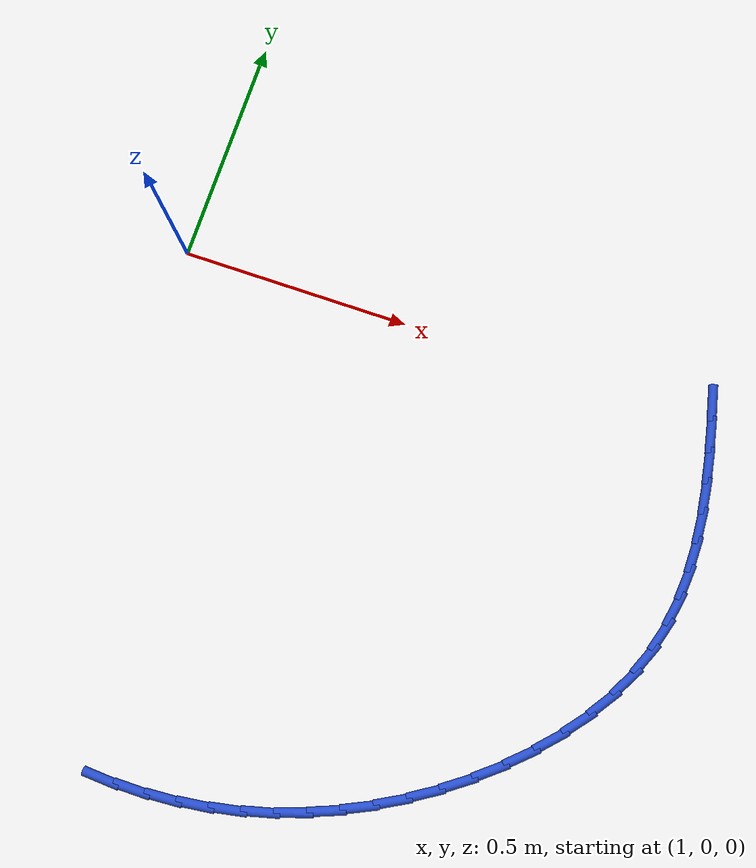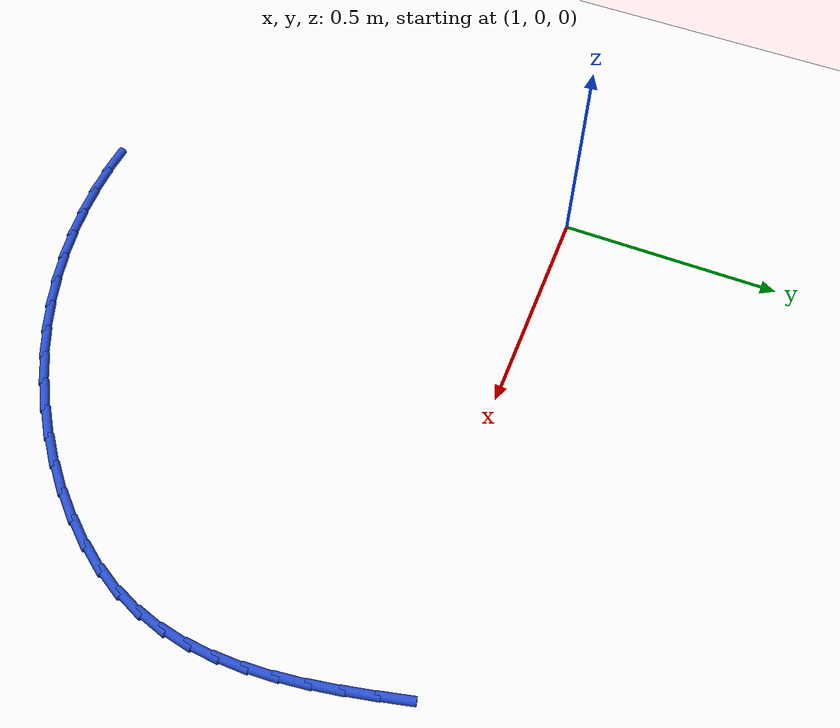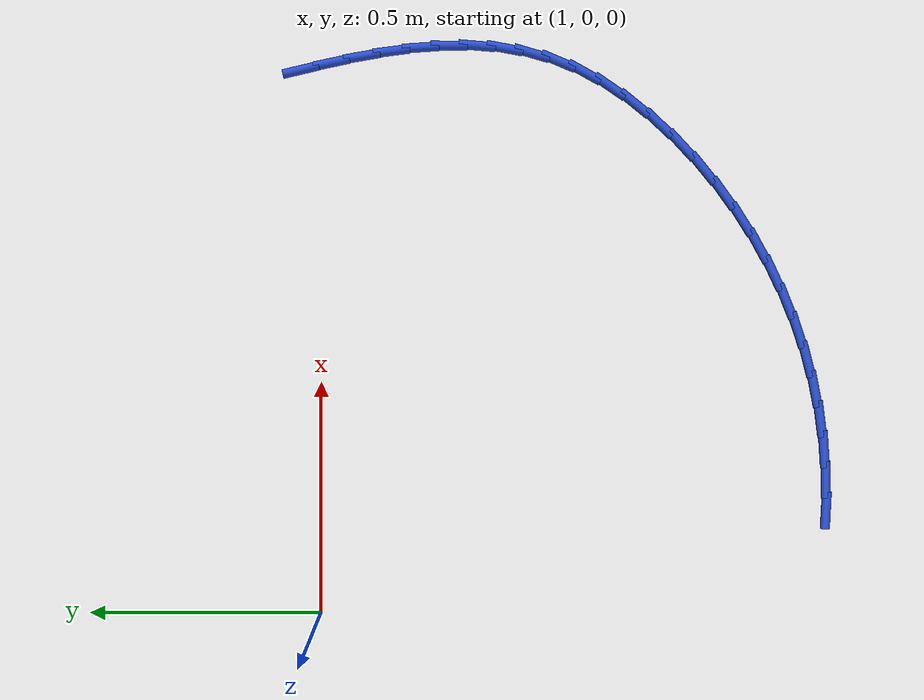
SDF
<sdf version="1.6">
 <world name="default">
  <model name="ground_plane">
   <static>1</static>
   <link name="link">
    <collision name="collision">
     <geometry><plane><normal>0 0 1</normal><size>100 100</size></plane></geometry>
     <surface><friction><ode><mu>100</mu><mu2>50</mu2></ode></friction></surface>
    </collision>
    <visual name="visual">
     <cast_shadows>0</cast_shadows>
     <geometry><plane><normal>0 0 1</normal><size>100 100</size></plane></geometry>
     <material>
      <script><uri>file://media/materials/scripts/gazebo.material</uri><name>Gazebo/WhiteGlow</name></script>
     </material>
    </visual>
   </link>
  </model>
  <model name="line">
   <link name="link_56">
    <pose>2.1741098647888886 0.04336262006528785 0.01 0 1.57 -1.3386704940285683</pose>
    <collision name="collision">
     <geometry><cylinder><radius>0.01</radius><length>0.08</length></cylinder></geometry>
    </collision>
    <visual name="visual">
     <material>
      <script><name>Gazebo/Blue</name><uri>file://media/materials/scripts/gazebo.material</uri></script>
     </material>
     <geometry><cylinder><radius>0.01</radius><length>0.08</length></cylinder></geometry>
    </visual>
   </link>
   <link name="link_57">
    <pose>2.189794230452137 -0.02298779241215685 0.01 0 1.57 -1.3637224707561575</pose>
    <collision name="collision">
     <geometry><cylinder><radius>0.01</radius><length>0.08</length></cylinder></geometry>
    </collision>
    <visual name="visual">
     <material>
      <script><name>Gazebo/Blue</name><uri>file://media/materials/scripts/gazebo.material</uri></script>
     </material>
     <geometry><cylinder><radius>0.01</radius><length>0.08</length></cylinder></geometry>
    </visual>
   </link>
   <link name="link_58">
    <pose>2.203486044030294 -0.08816044317537278 0.01 0 1.57 -1.3991478562906179</pose>
    <collision name="collision">
     <geometry><cylinder><radius>0.01</radius><length>0.08</length></cylinder></geometry>
    </collision>
    <visual name="visual">
     <material>
      <script><name>Gazebo/Blue</name><uri>file://media/materials/scripts/gazebo.material</uri></script>
     </material>
     <geometry><cylinder><radius>0.01</radius><length>0.08</length></cylinder></geometry>
    </visual>
   </link>
   <link name="link_59">
    <pose>2.214582710055159 -0.15217190940500847 0.01 0 1.57 -1.4458060471310468</pose>
    <collision name="collision">
     <geometry><cylinder><radius>0.01</radius><length>0.08</length></cylinder></geometry>
    </collision>
    <visual name="visual">
     <material>
      <script><name>Gazebo/Blue</name><uri>file://media/materials/scripts/gazebo.material</uri></script>
     </material>
     <geometry><cylinder><radius>0.01</radius><length>0.08</length></cylinder></geometry>
    </visual>
   </link>
   <link name="link_60">
    <pose>2.2224816330585346 -0.21503876828170937 0.01 0 1.57 -1.5045077440771053</pose>
    <collision name="collision">
     <geometry><cylinder><radius>0.01</radius><length>0.08</length></cylinder></geometry>
    </collision>
    <visual name="visual">
     <material>
      <script><name>Gazebo/Blue</name><uri>file://media/materials/scripts/gazebo.material</uri></script>
     </material>
     <geometry><cylinder><radius>0.01</radius><length>0.08</length></cylinder></geometry>
    </visual>
   </link>
   <link name="link_61">
    <pose>2.22658021757222 -0.2767775969861239 0.01 0 1.57 1.5657763686639918</pose>
    <collision name="collision">
     <geometry><cylinder><radius>0.01</radius><length>0.08</length></cylinder></geometry>
    </collision>
    <visual name="visual">
     <material>
      <script><name>Gazebo/Blue</name><uri>file://media/materials/scripts/gazebo.material</uri></script>
     </material>
     <geometry><cylinder><radius>0.01</radius><length>0.08</length></cylinder></geometry>
    </visual>
   </link>
   <link name="link_62">
    <pose>2.2262758681280177 -0.3374049726988976 0.01 0 1.57 1.4818387824859696</pose>
    <collision name="collision">
     <geometry><cylinder><radius>0.01</radius><length>0.08</length></cylinder></geometry>
    </collision>
    <visual name="visual">
     <material>
      <script><name>Gazebo/Blue</name><uri>file://media/materials/scripts/gazebo.material</uri></script>
     </material>
     <geometry><cylinder><radius>0.01</radius><length>0.08</length></cylinder></geometry>
    </visual>
   </link>
   <link name="link_63">
    <pose>2.2209659892577287 -0.39693747260067874 0.01 0 1.57 1.3861452039450164</pose>
    <collision name="collision">
     <geometry><cylinder><radius>0.01</radius><length>0.08</length></cylinder></geometry>
    </collision>
    <visual name="visual">
     <material>
      <script><name>Gazebo/Blue</name><uri>file://media/materials/scripts/gazebo.material</uri></script>
     </material>
     <geometry><cylinder><radius>0.01</radius><length>0.08</length></cylinder></geometry>
    </visual>
   </link>
   <link name="link_64">
    <pose>2.210047985493154 -0.4553916738721129 0.01 0 1.57 1.2807631401458992</pose>
    <collision name="collision">
     <geometry><cylinder><radius>0.01</radius><length>0.08</length></cylinder></geometry>
    </collision>
    <visual name="visual">
     <material>
      <script><name>Gazebo/Blue</name><uri>file://media/materials/scripts/gazebo.material</uri></script>
     </material>
     <geometry><cylinder><radius>0.01</radius><length>0.08</length></cylinder></geometry>
    </visual>
   </link>
   <link name="link_65">
    <pose>2.1929192613660935 -0.5127841536938476 0.01 0 1.57 1.169091732880703</pose>
    <collision name="collision">
     <geometry><cylinder><radius>0.01</radius><length>0.08</length></cylinder></geometry>
    </collision>
    <visual name="visual">
     <material>
      <script><name>Gazebo/Blue</name><uri>file://media/materials/scripts/gazebo.material</uri></script>
     </material>
     <geometry><cylinder><radius>0.01</radius><length>0.08</length></cylinder></geometry>
    </visual>
   </link>
   <link name="link_66">
    <pose>2.1689834960372436 -0.5691295911062549 0.01 0 1.57 1.060899085375088</pose>
    <collision name="collision">
     <geometry><cylinder><radius>0.01</radius><length>0.08</length></cylinder></geometry>
    </collision>
    <visual name="visual">
     <material>
      <script><name>Gazebo/Blue</name><uri>file://media/materials/scripts/gazebo.material</uri></script>
     </material>
     <geometry><cylinder><radius>0.01</radius><length>0.08</length></cylinder></geometry>
    </visual>
   </link>
   <link name="link_67">
    <pose>2.1381339268885418 -0.624294568713611 0.01 0 1.57 0.9661258553308218</pose>
    <collision name="collision">
     <geometry><cylinder><radius>0.01</radius><length>0.08</length></cylinder></geometry>
    </collision>
    <visual name="visual">
     <material>
      <script><name>Gazebo/Blue</name><uri>file://media/materials/scripts/gazebo.material</uri></script>
     </material>
     <geometry><cylinder><radius>0.01</radius><length>0.08</length></cylinder></geometry>
    </visual>
   </link>
   <link name="link_68">
    <pose>2.10109594615416 -0.6778939336522822 0.01 0 1.57 0.8829565884813513</pose>
    <collision name="collision">
     <geometry><cylinder><radius>0.01</radius><length>0.08</length></cylinder></geometry>
    </collision>
    <visual name="visual">
     <material>
      <script><name>Gazebo/Blue</name><uri>file://media/materials/scripts/gazebo.material</uri></script>
     </material>
     <geometry><cylinder><radius>0.01</radius><length>0.08</length></cylinder></geometry>
    </visual>
   </link>
   <link name="link_69">
    <pose>2.0586758450358005 -0.7295180602824558 0.01 0 1.57 0.8087048779379925</pose>
    <collision name="collision">
     <geometry><cylinder><radius>0.01</radius><length>0.08</length></cylinder></geometry>
    </collision>
    <visual name="visual">
     <material>
      <script><name>Gazebo/Blue</name><uri>file://media/materials/scripts/gazebo.material</uri></script>
     </material>
     <geometry><cylinder><radius>0.01</radius><length>0.08</length></cylinder></geometry>
    </visual>
   </link>
   <link name="link_70">
    <pose>2.011679914735161 -0.7787573229643202 0.01 0 1.57 0.7409804839857089</pose>
    <collision name="collision">
     <geometry><cylinder><radius>0.01</radius><length>0.08</length></cylinder></geometry>
    </collision>
    <visual name="visual">
     <material>
      <script><name>Gazebo/Blue</name><uri>file://media/materials/scripts/gazebo.material</uri></script>
     </material>
     <geometry><cylinder><radius>0.01</radius><length>0.08</length></cylinder></geometry>
    </visual>
   </link>
   <link name="link_71">
    <pose>1.960914446453945 -0.8252020960580623 0.01 0 1.57 0.6776585312725399</pose>
    <collision name="collision">
     <geometry><cylinder><radius>0.01</radius><length>0.08</length></cylinder></geometry>
    </collision>
    <visual name="visual">
     <material>
      <script><name>Gazebo/Blue</name><uri>file://media/materials/scripts/gazebo.material</uri></script>
     </material>
     <geometry><cylinder><radius>0.01</radius><length>0.08</length></cylinder></geometry>
    </visual>
   </link>
   <link name="link_72">
    <pose>1.9071857313938503 -0.8684427539238707 0.01 0 1.57 0.6167547979493384</pose>
    <collision name="collision">
     <geometry><cylinder><radius>0.01</radius><length>0.08</length></cylinder></geometry>
    </collision>
    <visual name="visual">
     <material>
      <script><name>Gazebo/Blue</name><uri>file://media/materials/scripts/gazebo.material</uri></script>
     </material>
     <geometry><cylinder><radius>0.01</radius><length>0.08</length></cylinder></geometry>
    </visual>
   </link>
   <link name="link_73">
    <pose>1.8512802472023921 -0.9080809241792457 0.01 0 1.57 0.5562017286901205</pose>
    <collision name="collision">
     <geometry><cylinder><radius>0.01</radius><length>0.08</length></cylinder></geometry>
    </collision>
    <visual name="visual">
     <material>
      <script><name>Gazebo/Blue</name><uri>file://media/materials/scripts/gazebo.material</uri></script>
     </material>
     <geometry><cylinder><radius>0.01</radius><length>0.08</length></cylinder></geometry>
    </visual>
   </link>
   <link name="link_74">
    <pose>1.7936456846916862 -0.9439106509761971 0.01 0 1.57 0.49524654773123367</pose>
    <collision name="collision">
     <geometry><cylinder><radius>0.01</radius><length>0.08</length></cylinder></geometry>
    </collision>
    <visual name="visual">
     <material>
      <script><name>Gazebo/Blue</name><uri>file://media/materials/scripts/gazebo.material</uri></script>
     </material>
     <geometry><cylinder><radius>0.01</radius><length>0.08</length></cylinder></geometry>
    </visual>
   </link>
   <link name="link_75">
    <pose>1.7344454424947975 -0.9758874443507818 0.01 0 1.57 0.43390168676485047</pose>
    <collision name="collision">
     <geometry><cylinder><radius>0.01</radius><length>0.08</length></cylinder></geometry>
    </collision>
    <visual name="visual">
     <material>
      <script><name>Gazebo/Blue</name><uri>file://media/materials/scripts/gazebo.material</uri></script>
     </material>
     <geometry><cylinder><radius>0.01</radius><length>0.08</length></cylinder></geometry>
    </visual>
   </link>
   <link name="link_76">
    <pose>1.6738341098032639 -1.003971817727715 0.01 0 1.57 0.37219290167778507</pose>
    <collision name="collision">
     <geometry><cylinder><radius>0.01</radius><length>0.08</length></cylinder></geometry>
    </collision>
    <visual name="visual">
     <material>
      <script><name>Gazebo/Blue</name><uri>file://media/materials/scripts/gazebo.material</uri></script>
     </material>
     <geometry><cylinder><radius>0.01</radius><length>0.08</length></cylinder></geometry>
    </visual>
   </link>
   <link name="link_77">
    <pose>1.6119662758086255 -1.0281242845317098 0.01 0 1.57 0.3101459219757816</pose>
    <collision name="collision">
     <geometry><cylinder><radius>0.01</radius><length>0.08</length></cylinder></geometry>
    </collision>
    <visual name="visual">
     <material>
      <script><name>Gazebo/Blue</name><uri>file://media/materials/scripts/gazebo.material</uri></script>
     </material>
     <geometry><cylinder><radius>0.01</radius><length>0.08</length></cylinder></geometry>
    </visual>
   </link>
   <link name="link_78">
    <pose>1.5489965297024204 -1.0483053581874815 0.01 0 1.57 0.247788069365283</pose>
    <collision name="collision">
     <geometry><cylinder><radius>0.01</radius><length>0.08</length></cylinder></geometry>
    </collision>
    <visual name="visual">
     <material>
      <script><name>Gazebo/Blue</name><uri>file://media/materials/scripts/gazebo.material</uri></script>
     </material>
     <geometry><cylinder><radius>0.01</radius><length>0.08</length></cylinder></geometry>
    </visual>
   </link>
   <link name="link_79">
    <pose>1.4850794606761883 -1.064475552119744 0.01 0 1.57 0.18514998144695277</pose>
    <collision name="collision">
     <geometry><cylinder><radius>0.01</radius><length>0.08</length></cylinder></geometry>
    </collision>
    <visual name="visual">
     <material>
      <script><name>Gazebo/Blue</name><uri>file://media/materials/scripts/gazebo.material</uri></script>
     </material>
     <geometry><cylinder><radius>0.01</radius><length>0.08</length></cylinder></geometry>
    </visual>
   </link>
   <link name="link_80">
    <pose>1.4203696579214673 -1.0765953797532113 0.01 0 1.57 0.12236141149070859</pose>
    <collision name="collision">
     <geometry><cylinder><radius>0.01</radius><length>0.08</length></cylinder></geometry>
    </collision>
    <visual name="visual">
     <material>
      <script><name>Gazebo/Blue</name><uri>file://media/materials/scripts/gazebo.material</uri></script>
     </material>
     <geometry><cylinder><radius>0.01</radius><length>0.08</length></cylinder></geometry>
    </visual>
   </link>
   <link name="link_81">
    <pose>1.3550220466380865 -1.084631552500556 0.01 0 1.57 0.0609235735471771</pose>
    <collision name="collision">
     <geometry><cylinder><radius>0.01</radius><length>0.08</length></cylinder></geometry>
    </collision>
    <visual name="visual">
     <material>
      <script><name>Gazebo/Blue</name><uri>file://media/materials/scripts/gazebo.material</uri></script>
     </material>
     <geometry><cylinder><radius>0.01</radius><length>0.08</length></cylinder></geometry>
    </visual>
   </link>
   <link name="link_82">
    <pose>1.2891967592163078 -1.0886468332846466 0.01 0 1.57 0.0020082514198893108</pose>
    <collision name="collision">
     <geometry><cylinder><radius>0.01</radius><length>0.08</length></cylinder></geometry>
    </collision>
    <visual name="visual">
     <material>
      <script><name>Gazebo/Blue</name><uri>file://media/materials/scripts/gazebo.material</uri></script>
     </material>
     <geometry><cylinder><radius>0.01</radius><length>0.08</length></cylinder></geometry>
    </visual>
   </link>
   <link name="link_83">
    <pose>1.223058030393061 -1.0887796566592778 0.01 0 1.57 -0.05439294878936766</pose>
    <collision name="collision">
     <geometry><cylinder><radius>0.01</radius><length>0.08</length></cylinder></geometry>
    </collision>
    <visual name="visual">
     <material>
      <script><name>Gazebo/Blue</name><uri>file://media/materials/scripts/gazebo.material</uri></script>
     </material>
     <geometry><cylinder><radius>0.01</radius><length>0.08</length></cylinder></geometry>
    </visual>
   </link>
  </model>
 </world>
</sdf>
